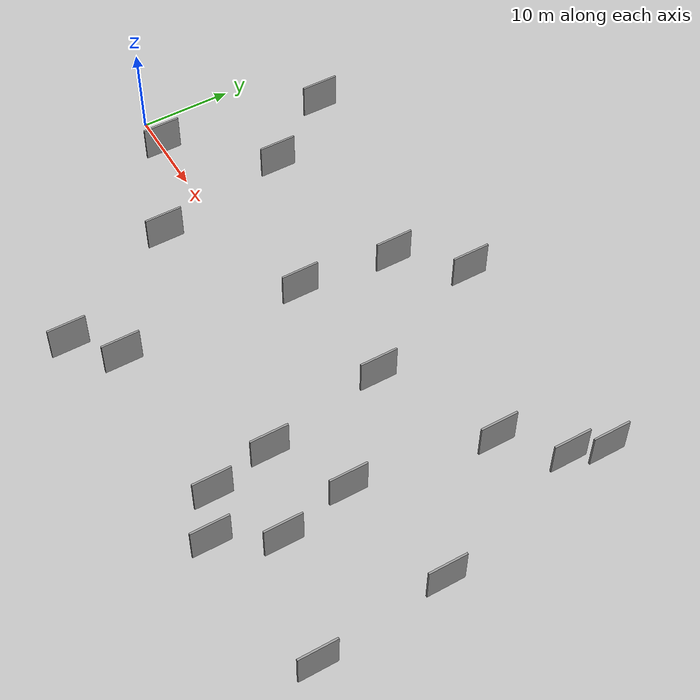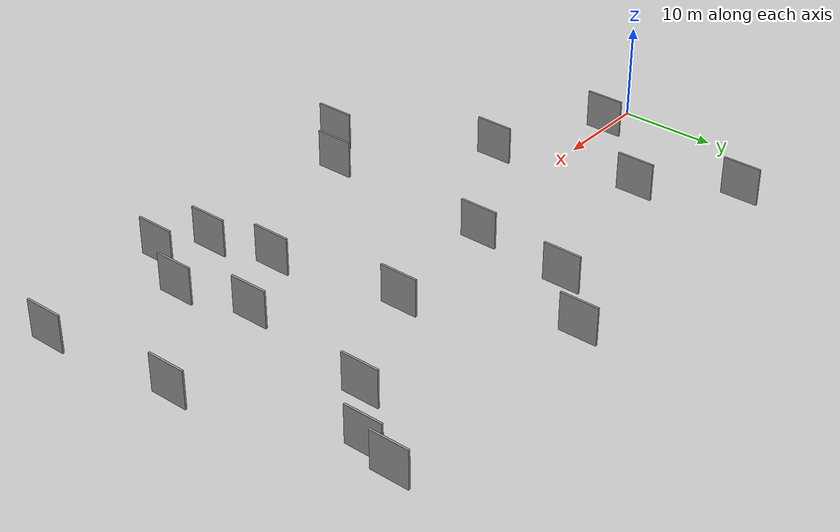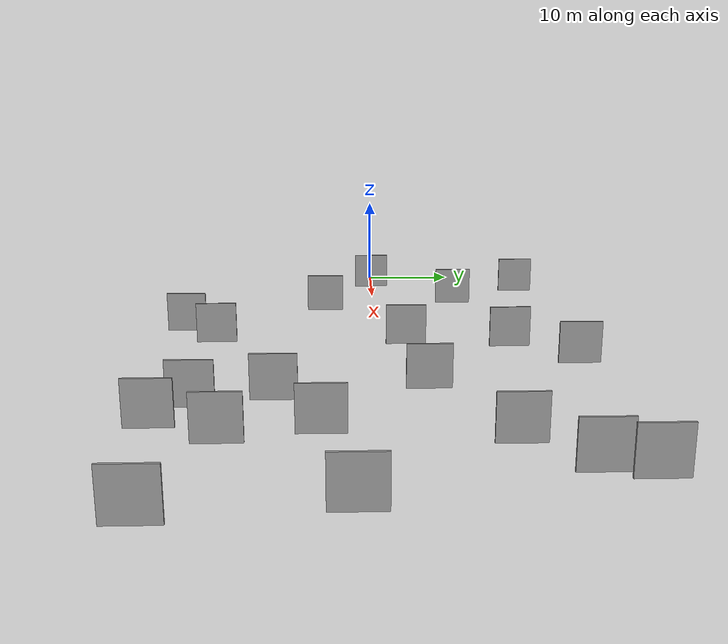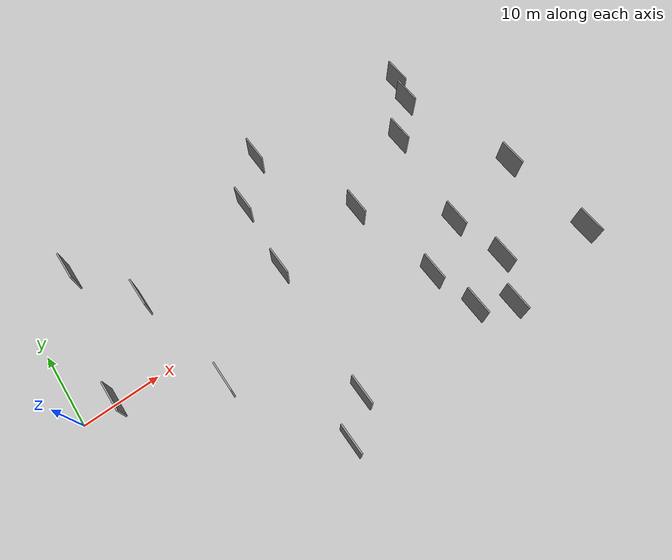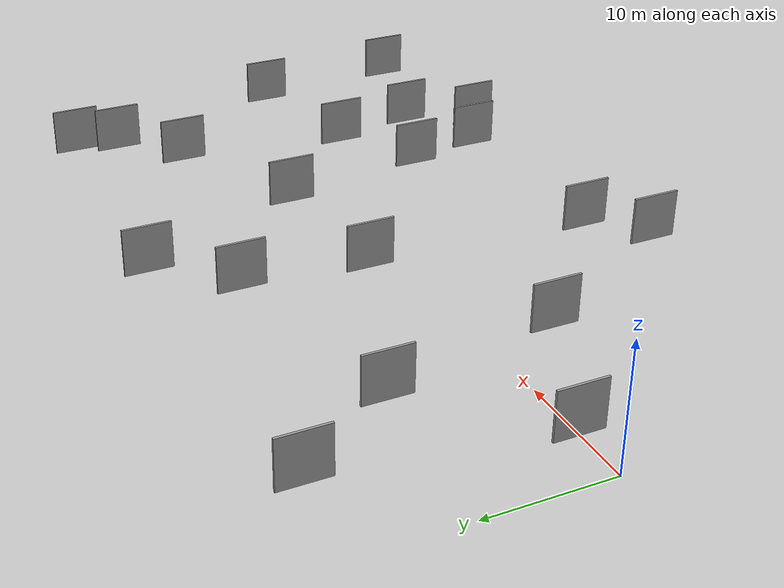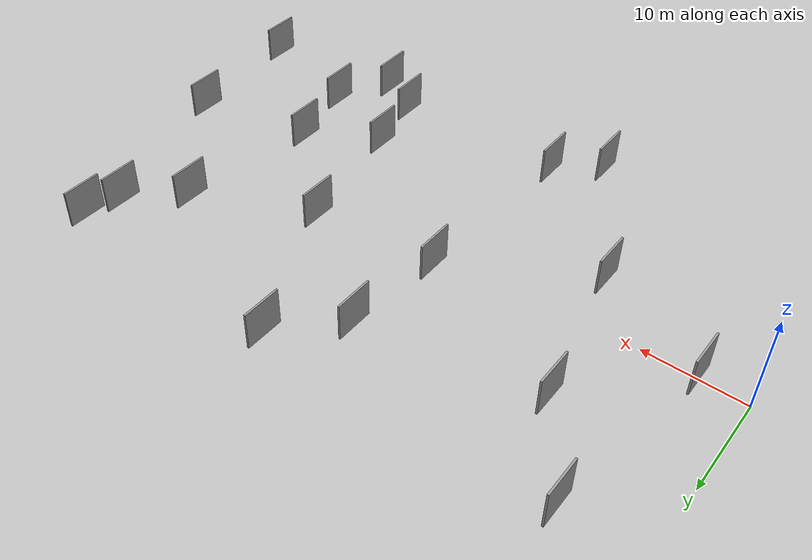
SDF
<sdf version="1.6">
 <world name="default">
  <scene>
   <sky><clouds><speed>12</speed></clouds></sky>
   <ambient>0.4 0.4 0.4 1</ambient>
   <background>0.7 0.7 0.7 1</background>
   <shadows>1</shadows>
  </scene>
  <gravity>0 0 -9.8066</gravity>
  <magnetic_field>6e-06 2.3e-05 -4.2e-05</magnetic_field>
  <physics default="0" name="default_physics" type="ode">
   <ode>
    <solver>
     <type>quick</type>
     <iters>10</iters>
     <sor>1.0</sor>
     <use_dynamic_moi_rescaling>0</use_dynamic_moi_rescaling>
    </solver>
    <constraints>
     <cfm>0</cfm>
     <erp>0.2</erp>
     <contact_max_correcting_vel>100</contact_max_correcting_vel>
     <contact_surface_layer>0.001</contact_surface_layer>
    </constraints>
   </ode>
   <max_step_size>0.004</max_step_size>
   <real_time_factor>1</real_time_factor>
   <real_time_update_rate>250</real_time_update_rate>
  </physics>
  <light name="sun" type="directional">
   <pose>0 0 10 0 0 0</pose>
   <diffuse>0.8 0.8 0.8 1</diffuse>
   <specular>0.2 0.2 0.2 1</specular>
   <attenuation>
    <range>1000</range>
    <constant>0.9</constant>
    <linear>0.01</linear>
    <quadratic>0.001</quadratic>
   </attenuation>
   <direction>-0.5 0.1 -0.9</direction>
  </light>
  <model name="grey_wall_1">
   <static>1</static>
   <pose>7.4621 17.9205 0.0 0.000000 0.000000 1.570796</pose>
   <link name="link">
    <pose>0 0 2.00 0 0 0</pose>
    <collision name="collision"><geometry><box><size>4.00 0.2 4.00</size></box></geometry></collision>
    <visual name="visual">
     <cast_shadows>0</cast_shadows>
     <geometry><box><size>4.00 0.2 4.00</size></box></geometry>
     <material>
      <script>
       <uri>model://grey_wall/materials/scripts</uri>
       <uri>model://grey_wall/materials/textures</uri>
       <name>vrc/grey_wall</name>
      </script>
     </material>
    </visual>
   </link>
  </model>
  <model name="grey_wall_2">
   <static>1</static>
   <pose>46.7959 -15.8701 0.0 0.000000 0.000000 1.570796</pose>
   <link name="link">
    <pose>0 0 2.00 0 0 0</pose>
    <collision name="collision"><geometry><box><size>4.00 0.2 4.00</size></box></geometry></collision>
    <visual name="visual">
     <cast_shadows>0</cast_shadows>
     <geometry><box><size>4.00 0.2 4.00</size></box></geometry>
     <material>
      <script>
       <uri>model://grey_wall/materials/scripts</uri>
       <uri>model://grey_wall/materials/textures</uri>
       <name>vrc/grey_wall</name>
      </script>
     </material>
    </visual>
   </link>
  </model>
  <model name="grey_wall_3">
   <static>1</static>
   <pose>29.8179 2.8084 0.0 0.000000 0.000000 1.570796</pose>
   <link name="link">
    <pose>0 0 2.00 0 0 0</pose>
    <collision name="collision"><geometry><box><size>4.00 0.2 4.00</size></box></geometry></collision>
    <visual name="visual">
     <cast_shadows>0</cast_shadows>
     <geometry><box><size>4.00 0.2 4.00</size></box></geometry>
     <material>
      <script>
       <uri>model://grey_wall/materials/scripts</uri>
       <uri>model://grey_wall/materials/textures</uri>
       <name>vrc/grey_wall</name>
      </script>
     </material>
    </visual>
   </link>
  </model>
  <model name="grey_wall_4">
   <static>1</static>
   <pose>45.3434 -9.2093 0.0 0.000000 0.000000 1.570796</pose>
   <link name="link">
    <pose>0 0 2.00 0 0 0</pose>
    <collision name="collision"><geometry><box><size>4.00 0.2 4.00</size></box></geometry></collision>
    <visual name="visual">
     <cast_shadows>0</cast_shadows>
     <geometry><box><size>4.00 0.2 4.00</size></box></geometry>
     <material>
      <script>
       <uri>model://grey_wall/materials/scripts</uri>
       <uri>model://grey_wall/materials/textures</uri>
       <name>vrc/grey_wall</name>
      </script>
     </material>
    </visual>
   </link>
  </model>
  <model name="grey_wall_5">
   <static>1</static>
   <pose>52.5863 -5.0500 0.0 0.000000 0.000000 1.570796</pose>
   <link name="link">
    <pose>0 0 2.00 0 0 0</pose>
    <collision name="collision"><geometry><box><size>4.00 0.2 4.00</size></box></geometry></collision>
    <visual name="visual">
     <cast_shadows>0</cast_shadows>
     <geometry><box><size>4.00 0.2 4.00</size></box></geometry>
     <material>
      <script>
       <uri>model://grey_wall/materials/scripts</uri>
       <uri>model://grey_wall/materials/textures</uri>
       <name>vrc/grey_wall</name>
      </script>
     </material>
    </visual>
   </link>
  </model>
  <model name="grey_wall_6">
   <static>1</static>
   <pose>54.7894 9.7094 0.0 0.000000 0.000000 1.570796</pose>
   <link name="link">
    <pose>0 0 2.00 0 0 0</pose>
    <collision name="collision"><geometry><box><size>4.00 0.2 4.00</size></box></geometry></collision>
    <visual name="visual">
     <cast_shadows>0</cast_shadows>
     <geometry><box><size>4.00 0.2 4.00</size></box></geometry>
     <material>
      <script>
       <uri>model://grey_wall/materials/scripts</uri>
       <uri>model://grey_wall/materials/textures</uri>
       <name>vrc/grey_wall</name>
      </script>
     </material>
    </visual>
   </link>
  </model>
  <model name="grey_wall_7">
   <static>1</static>
   <pose>66.2464 -16.0879 0.0 0.000000 0.000000 1.570796</pose>
   <link name="link">
    <pose>0 0 2.00 0 0 0</pose>
    <collision name="collision"><geometry><box><size>4.00 0.2 4.00</size></box></geometry></collision>
    <visual name="visual">
     <cast_shadows>0</cast_shadows>
     <geometry><box><size>4.00 0.2 4.00</size></box></geometry>
     <material>
      <script>
       <uri>model://grey_wall/materials/scripts</uri>
       <uri>model://grey_wall/materials/textures</uri>
       <name>vrc/grey_wall</name>
      </script>
     </material>
    </visual>
   </link>
  </model>
  <model name="grey_wall_8">
   <static>1</static>
   <pose>24.3966 -19.9756 0.0 0.000000 0.000000 1.570796</pose>
   <link name="link">
    <pose>0 0 2.00 0 0 0</pose>
    <collision name="collision"><geometry><box><size>4.00 0.2 4.00</size></box></geometry></collision>
    <visual name="visual">
     <cast_shadows>0</cast_shadows>
     <geometry><box><size>4.00 0.2 4.00</size></box></geometry>
     <material>
      <script>
       <uri>model://grey_wall/materials/scripts</uri>
       <uri>model://grey_wall/materials/textures</uri>
       <name>vrc/grey_wall</name>
      </script>
     </material>
    </visual>
   </link>
  </model>
  <model name="grey_wall_9">
   <static>1</static>
   <pose>36.3613 18.7348 0.0 0.000000 0.000000 1.570796</pose>
   <link name="link">
    <pose>0 0 2.00 0 0 0</pose>
    <collision name="collision"><geometry><box><size>4.00 0.2 4.00</size></box></geometry></collision>
    <visual name="visual">
     <cast_shadows>0</cast_shadows>
     <geometry><box><size>4.00 0.2 4.00</size></box></geometry>
     <material>
      <script>
       <uri>model://grey_wall/materials/scripts</uri>
       <uri>model://grey_wall/materials/textures</uri>
       <name>vrc/grey_wall</name>
      </script>
     </material>
    </visual>
   </link>
  </model>
  <model name="grey_wall_10">
   <static>1</static>
   <pose>4.6107 -0.0028 0.0 0.000000 0.000000 1.570796</pose>
   <link name="link">
    <pose>0 0 2.00 0 0 0</pose>
    <collision name="collision"><geometry><box><size>4.00 0.2 4.00</size></box></geometry></collision>
    <visual name="visual">
     <cast_shadows>0</cast_shadows>
     <geometry><box><size>4.00 0.2 4.00</size></box></geometry>
     <material>
      <script>
       <uri>model://grey_wall/materials/scripts</uri>
       <uri>model://grey_wall/materials/textures</uri>
       <name>vrc/grey_wall</name>
      </script>
     </material>
    </visual>
   </link>
  </model>
  <model name="grey_wall_11">
   <static>1</static>
   <pose>30.8883 13.0872 0.0 0.000000 0.000000 1.570796</pose>
   <link name="link">
    <pose>0 0 2.00 0 0 0</pose>
    <collision name="collision"><geometry><box><size>4.00 0.2 4.00</size></box></geometry></collision>
    <visual name="visual">
     <cast_shadows>0</cast_shadows>
     <geometry><box><size>4.00 0.2 4.00</size></box></geometry>
     <material>
      <script>
       <uri>model://grey_wall/materials/scripts</uri>
       <uri>model://grey_wall/materials/textures</uri>
       <name>vrc/grey_wall</name>
      </script>
     </material>
    </visual>
   </link>
  </model>
  <model name="grey_wall_12">
   <static>1</static>
   <pose>51.1539 -18.3211 0.0 0.000000 0.000000 1.570796</pose>
   <link name="link">
    <pose>0 0 2.00 0 0 0</pose>
    <collision name="collision"><geometry><box><size>4.00 0.2 4.00</size></box></geometry></collision>
    <visual name="visual">
     <cast_shadows>0</cast_shadows>
     <geometry><box><size>4.00 0.2 4.00</size></box></geometry>
     <material>
      <script>
       <uri>model://grey_wall/materials/scripts</uri>
       <uri>model://grey_wall/materials/textures</uri>
       <name>vrc/grey_wall</name>
      </script>
     </material>
    </visual>
   </link>
  </model>
  <model name="grey_wall_13">
   <static>1</static>
   <pose>54.2261 -12.6789 0.0 0.000000 0.000000 1.570796</pose>
   <link name="link">
    <pose>0 0 2.00 0 0 0</pose>
    <collision name="collision"><geometry><box><size>4.00 0.2 4.00</size></box></geometry></collision>
    <visual name="visual">
     <cast_shadows>0</cast_shadows>
     <geometry><box><size>4.00 0.2 4.00</size></box></geometry>
     <material>
      <script>
       <uri>model://grey_wall/materials/scripts</uri>
       <uri>model://grey_wall/materials/textures</uri>
       <name>vrc/grey_wall</name>
      </script>
     </material>
    </visual>
   </link>
  </model>
  <model name="grey_wall_14">
   <static>1</static>
   <pose>42.9359 3.9813 0.0 0.000000 0.000000 1.570796</pose>
   <link name="link">
    <pose>0 0 2.00 0 0 0</pose>
    <collision name="collision"><geometry><box><size>4.00 0.2 4.00</size></box></geometry></collision>
    <visual name="visual">
     <cast_shadows>0</cast_shadows>
     <geometry><box><size>4.00 0.2 4.00</size></box></geometry>
     <material>
      <script>
       <uri>model://grey_wall/materials/scripts</uri>
       <uri>model://grey_wall/materials/textures</uri>
       <name>vrc/grey_wall</name>
      </script>
     </material>
    </visual>
   </link>
  </model>
  <model name="grey_wall_15">
   <static>1</static>
   <pose>59.7703 14.3751 0.0 0.000000 0.000000 1.570796</pose>
   <link name="link">
    <pose>0 0 2.00 0 0 0</pose>
    <collision name="collision"><geometry><box><size>4.00 0.2 4.00</size></box></geometry></collision>
    <visual name="visual">
     <cast_shadows>0</cast_shadows>
     <geometry><box><size>4.00 0.2 4.00</size></box></geometry>
     <material>
      <script>
       <uri>model://grey_wall/materials/scripts</uri>
       <uri>model://grey_wall/materials/textures</uri>
       <name>vrc/grey_wall</name>
      </script>
     </material>
    </visual>
   </link>
  </model>
  <model name="grey_wall_16">
   <static>1</static>
   <pose>13.2607 9.4195 0.0 0.000000 0.000000 1.570796</pose>
   <link name="link">
    <pose>0 0 2.00 0 0 0</pose>
    <collision name="collision"><geometry><box><size>4.00 0.2 4.00</size></box></geometry></collision>
    <visual name="visual">
     <cast_shadows>0</cast_shadows>
     <geometry><box><size>4.00 0.2 4.00</size></box></geometry>
     <material>
      <script>
       <uri>model://grey_wall/materials/scripts</uri>
       <uri>model://grey_wall/materials/textures</uri>
       <name>vrc/grey_wall</name>
      </script>
     </material>
    </visual>
   </link>
  </model>
  <model name="grey_wall_17">
   <static>1</static>
   <pose>60.8624 17.9759 0.0 0.000000 0.000000 1.570796</pose>
   <link name="link">
    <pose>0 0 2.00 0 0 0</pose>
    <collision name="collision"><geometry><box><size>4.00 0.2 4.00</size></box></geometry></collision>
    <visual name="visual">
     <cast_shadows>0</cast_shadows>
     <geometry><box><size>4.00 0.2 4.00</size></box></geometry>
     <material>
      <script>
       <uri>model://grey_wall/materials/scripts</uri>
       <uri>model://grey_wall/materials/textures</uri>
       <name>vrc/grey_wall</name>
      </script>
     </material>
    </visual>
   </link>
  </model>
  <model name="grey_wall_18">
   <static>1</static>
   <pose>28.6768 -16.2611 0.0 0.000000 0.000000 1.570796</pose>
   <link name="link">
    <pose>0 0 2.00 0 0 0</pose>
    <collision name="collision"><geometry><box><size>4.00 0.2 4.00</size></box></geometry></collision>
    <visual name="visual">
     <cast_shadows>0</cast_shadows>
     <geometry><box><size>4.00 0.2 4.00</size></box></geometry>
     <material>
      <script>
       <uri>model://grey_wall/materials/scripts</uri>
       <uri>model://grey_wall/materials/textures</uri>
       <name>vrc/grey_wall</name>
      </script>
     </material>
    </visual>
   </link>
  </model>
  <model name="grey_wall_19">
   <static>1</static>
   <pose>16.3306 -5.5650 0.0 0.000000 0.000000 1.570796</pose>
   <link name="link">
    <pose>0 0 2.00 0 0 0</pose>
    <collision name="collision"><geometry><box><size>4.00 0.2 4.00</size></box></geometry></collision>
    <visual name="visual">
     <cast_shadows>0</cast_shadows>
     <geometry><box><size>4.00 0.2 4.00</size></box></geometry>
     <material>
      <script>
       <uri>model://grey_wall/materials/scripts</uri>
       <uri>model://grey_wall/materials/textures</uri>
       <name>vrc/grey_wall</name>
      </script>
     </material>
    </visual>
   </link>
  </model>
  <model name="grey_wall_20">
   <static>1</static>
   <pose>64.9175 -2.4371 0.0 0.000000 0.000000 1.570796</pose>
   <link name="link">
    <pose>0 0 2.00 0 0 0</pose>
    <collision name="collision"><geometry><box><size>4.00 0.2 4.00</size></box></geometry></collision>
    <visual name="visual">
     <cast_shadows>0</cast_shadows>
     <geometry><box><size>4.00 0.2 4.00</size></box></geometry>
     <material>
      <script>
       <uri>model://grey_wall/materials/scripts</uri>
       <uri>model://grey_wall/materials/textures</uri>
       <name>vrc/grey_wall</name>
      </script>
     </material>
    </visual>
   </link>
  </model>
 </world>
</sdf>
